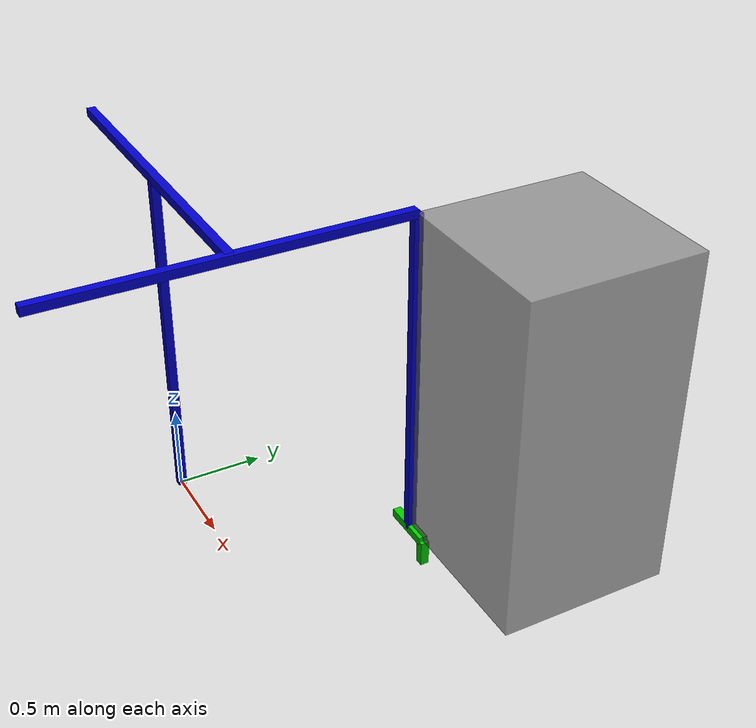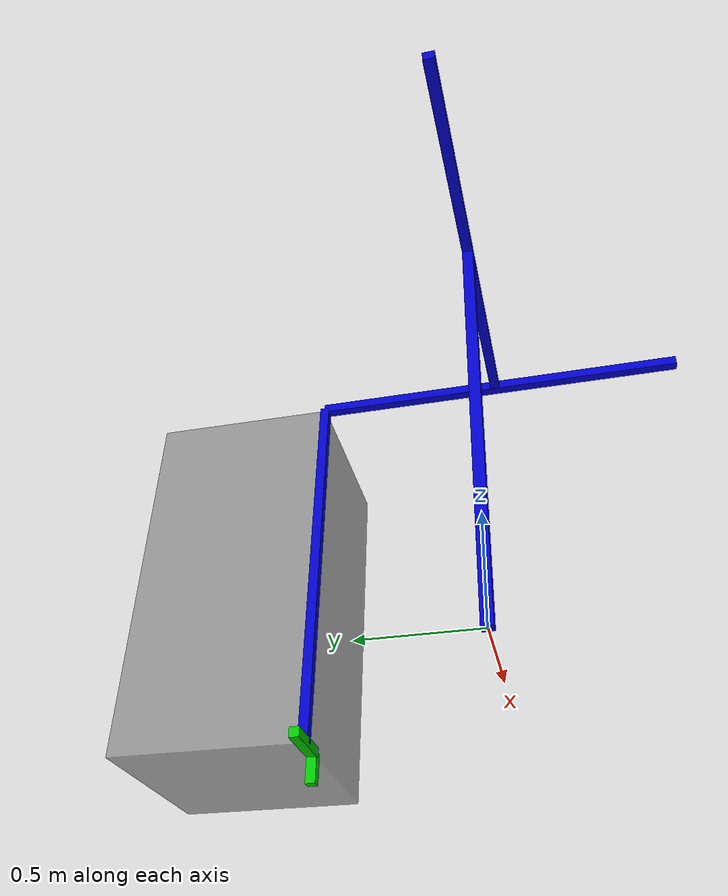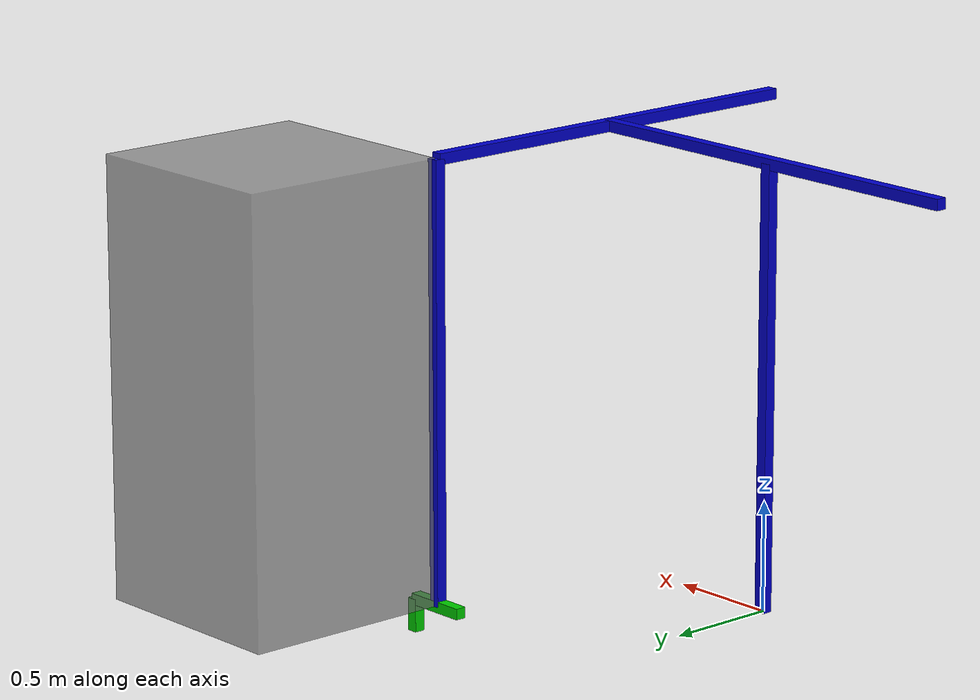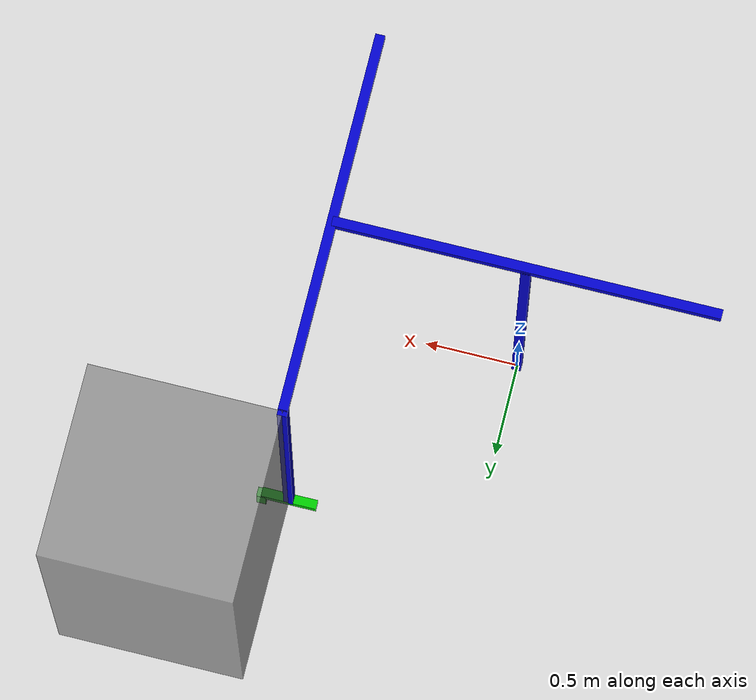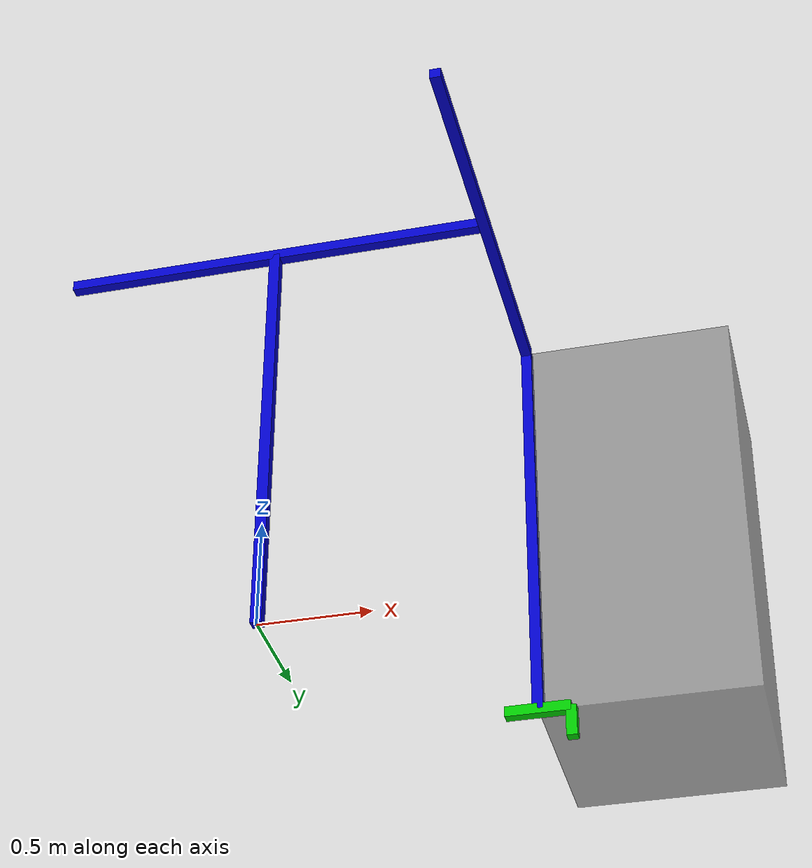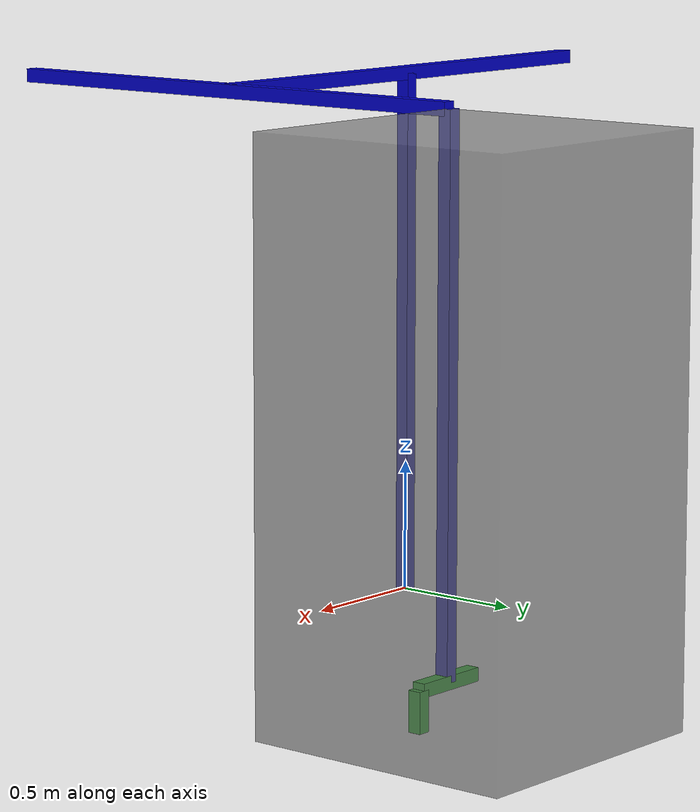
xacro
<?xml version = "1.0"?>

<robot name="claw_arm" xmlns:xacro="http://www.ros.org/wiki/xacro">

	<xacro:property name="length_1" value="2.0"/>
	<xacro:property name="length_2" value="2.0"/>
	<xacro:property name="length_3" value="2.0"/>
	<xacro:property name="width" value="0.05"/>

	<material name="blue">
    <color rgba="0 0 0.8 1"/>
  </material>

  <material name="green">
    <color rgba="0 0.8 0 1"/>
  </material>

  <material name="clear_color">
      <color rgba="0.5 0.5 0.5 0.7"/>
  </material>

  <link name="world"/>

  <joint name="world_to_bin" type="fixed">
		<origin xyz="${(length_2/2.0)} ${(length_2/2.0)} 0.0" rpy="0.0 0.0 0.0"/>
		<parent link="world"/>
		<child link="bin"/>
	</joint>

  <link name="bin">
  	<visual>
			<origin xyz="0.5 0.5 1.0" rpy="0.0 0.0 0.0"/>
			<geometry>
				<box size="1.0 1.0 2.0"/>
			</geometry>
			<material name="clear_color"/>
		</visual>
  </link>

  <joint name="world_to_base" type="fixed">
		<origin xyz="0.0 0.0 ${length_1/2.0}" rpy="0.0 0.0 0.0"/>
		<parent link="world"/>
		<child link="base_link"/>
	</joint>

	<link name="base_link">
		<visual>
			<origin xyz="0.0 0.0 0.0" rpy="0.0 0.0 0.0"/>
			<geometry>
				<box size="${width} ${width} ${length_1}"/>
			</geometry>
			<material name="blue"/>
		</visual>
		<collision>
			<origin xyz="0.0 0.0 0.0" rpy="0.0 0.0 0.0"/>
			<geometry>
				<box size="${width} ${width} ${length_1}"/>
			</geometry>
		</collision>
	</link>

	<joint name="base_to_link1" type="prismatic">
		<origin xyz="0.0 0.0 ${length_1/2.0}" rpy="0.0 0.0 0.0"/>
		<parent link="base_link"/>
		<child link="link_1"/>
		<limit effort="1000.0" lower="0.0" upper="1.0" velocity="0.5"/>
		<axis xyz="1.0 0.0 0.0"/>
	</joint>

	<link name="link_1">
		<visual>
			<origin xyz="0.0 0.0 0.0" rpy="0.0 1.57 0.0"/>
			<geometry>
				<box size="${width} ${width} ${length_2}"/>
			</geometry>
			<material name="blue"/>
		</visual>
		<collision>
			<origin xyz="0.0 0.0 0.0" rpy="1.57 0.0 0.0"/>
			<geometry>
				<box size="${width} ${width} ${length_2}"/>
			</geometry>
		</collision>
	</link>

	<joint name="link1_to_link2" type="prismatic">
		<origin xyz="${length_2/2.0} 0.0 0.0" rpy="0.0 0.0 0.0"/>
		<parent link="link_1"/>
		<child link="link_2"/>
		<limit effort="1000.0" lower="0.0" upper="1.0" velocity="0.5"/>
		<axis xyz="0.0 1.0 0.0"/>
	</joint>

	<link name="link_2">
		<visual>
			<origin xyz="0.0 0.0 0.0" rpy="1.57 0.0 0.0"/>
			<geometry>
				<box size="${width} ${width} ${length_2}"/>
			</geometry>
			<material name="blue"/>
		</visual>
		<collision>
			<origin xyz="0.0 0.0 0.0" rpy="1.57 0.0 0.0"/>
			<geometry>
				<box size="${width} ${width} ${length_2}"/>
			</geometry>
		</collision>
	</link>

	<joint name="link2_to_link3" type="prismatic">
		<origin xyz="0.0 ${length_2/2.0} -${length_3}" rpy="0.0 0.0 0.0"/>
		<parent link="link_2"/>
		<child link="link_3"/>
		<limit effort="1000.0" lower="0.0" upper="2.0" velocity="0.5"/>
		<axis xyz="0.0 0.0 1.0"/>
	</joint>

	<link name="link_3">
		<visual>
			<origin xyz="0.0 0.0 ${length_3/2.0}" rpy="0.0 0.0 1.57"/>
			<geometry>
				<box size="${width} ${width} ${length_3}"/>
			</geometry>
			<material name="blue"/>
		</visual>
	</link>

	<joint name="link3_to_claw_base" type="fixed">
		<origin xyz="0.0 0.0 0.0" rpy="0.0 0.0 0.0"/>
		<parent link="link_3"/>
		<child link="claw_base"/>
	</joint>

	<link name="claw_base">
		<visual>
			<origin xyz="0.0 0.0 0.0" rpy="0.0 1.57 0.0"/>
			<geometry>
				<box size="${width} ${width} 0.3"/>
			</geometry>
			<material name="green"/>
		</visual>
		<collision>
			<origin xyz="0.0 0.0 0.0" rpy="0.0 1.57 0.0"/>
			<geometry>
				<box size="${width} ${width} 0.3"/>
			</geometry>
		</collision>
	</link>

	<joint name="claw_base_to_claw_leg1" type="fixed">
		<origin xyz="0.15 0.0 -0.075" rpy="0.0 0.0 3.14"/>
		<parent link="claw_base"/>
		<child link="claw_leg1"/>
	</joint>

	<link name="claw_leg1">
		<visual>
			<origin xyz="0.0 0.0 0.0" rpy="0.0 0.0 1.57"/>
			<geometry>
				<box size="${width} ${width} 0.15"/>
			</geometry>
			<material name="green"/>
		</visual>
		<collision>
			<origin xyz="0.0 0.0 0.0" rpy="0.0 0.0 1.57"/>
			<geometry>
				<box size="${width} ${width} 0.15"/>
			</geometry>
		</collision>
	</link>

	<joint name="claw_leg1_to_claw_leg2" type="prismatic">
		<origin xyz="0.0 0.0 0.0" rpy="0.0 0.0 0.0"/>
		<parent link="claw_leg1"/>
		<child link="claw_leg2"/>
		<limit effort="1000.0" lower="0.0" upper="0.3" velocity="0.3"/>
		<axis xyz="1.0 0.0 0.0"/>
	</joint>

	<link name="claw_leg2">
		<visual>
			<origin xyz="0.0 0.0 0.0" rpy="0.0 0.0 1.57"/>
			<geometry>
				<box size="${width} ${width} 0.15"/>
			</geometry>
			<material name="green"/>
		</visual>
		<collision>
			<origin xyz="0.0 0.0 0.0" rpy="0.0 0.0 1.57"/>
			<geometry>
				<box size="${width} ${width} 0.15"/>
			</geometry>
		</collision>
	</link>

</robot>
